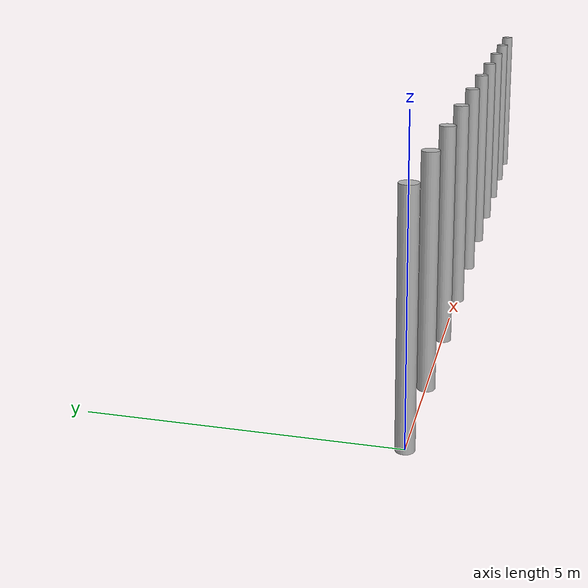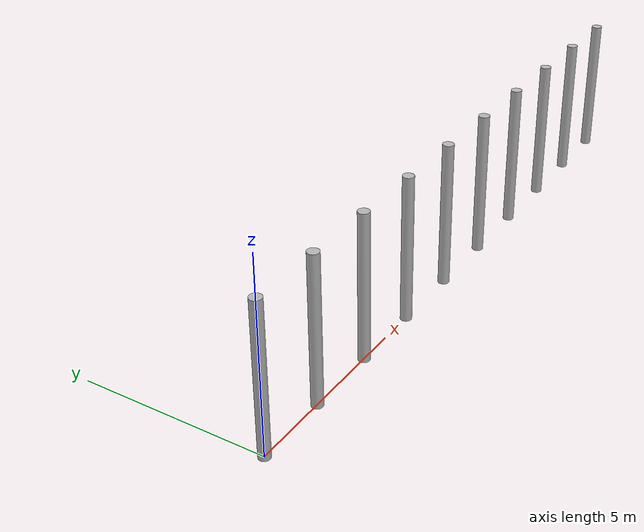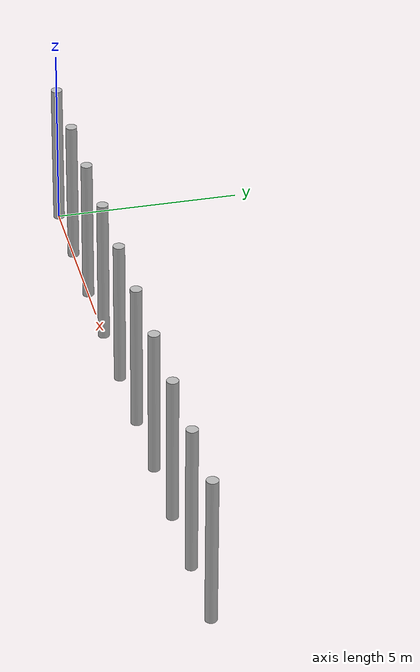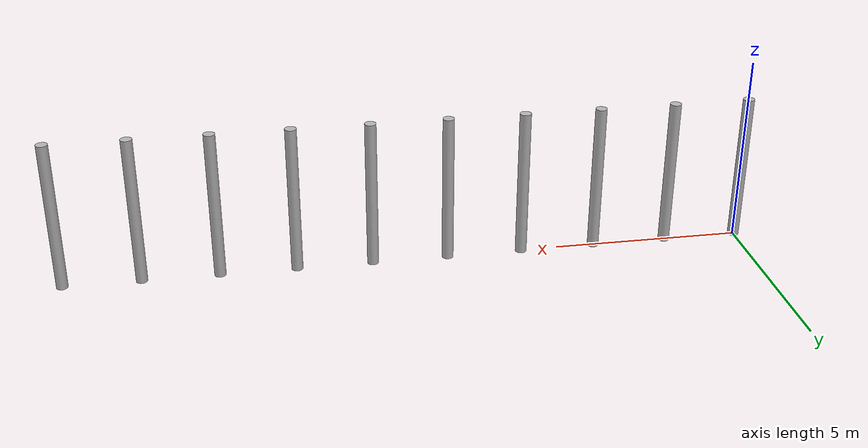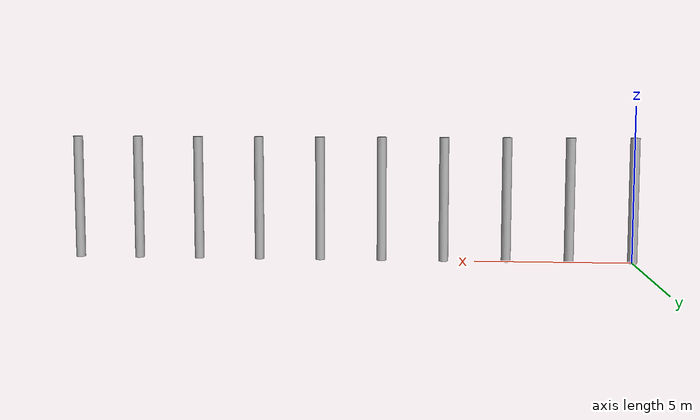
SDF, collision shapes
<?xml version="1.0" ?>
<sdf version="1.6">
  <model name="crop_row">
    <static>true</static>
    <include>
      <name>TREE_0</name>
      <uri>model://pine_tree</uri>
      <pose>0 0 0 0 0 0</pose>
    </include>
    <include>
      <name>TREE_1</name>
      <uri>model://pine_tree</uri>
      <pose>2 0 0 0 0 0</pose>
    </include>
    <include>
      <name>TREE_2</name>
      <uri>model://pine_tree</uri>
      <pose>4 0 0 0 0 0</pose>
    </include>
    <include>
      <name>TREE_3</name>
      <uri>model://pine_tree</uri>
      <pose>6 0 0 0 0 0</pose>
    </include>
    <include>
      <name>TREE_4</name>
      <uri>model://pine_tree</uri>
      <pose>8 0 0 0 0 0</pose>
    </include>
    <include>
      <name>TREE_5</name>
      <uri>model://pine_tree</uri>
      <pose>10 0 0 0 0 0</pose>
    </include>
    <include>
      <name>TREE_6</name>
      <uri>model://pine_tree</uri>
      <pose>12 0 0 0 0 0</pose>
    </include>
    <include>
      <name>TREE_7</name>
      <uri>model://pine_tree</uri>
      <pose>14 0 0 0 0 0</pose>
    </include>
    <include>
      <name>TREE_8</name>
      <uri>model://pine_tree</uri>
      <pose>16 0 0 0 0 0</pose>
    </include>
    <include>
      <name>TREE_9</name>
      <uri>model://pine_tree</uri>
      <pose>18 0 0 0 0 0</pose>
    </include>
  </model>
</sdf>

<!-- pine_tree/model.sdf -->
<sdf version="1.6">
  <model name="pine_tree">
    <static>true</static>
    <link name="link">
      <collision name='collision'>
        <pose>0 0 2.0 0 0 0</pose>
        <geometry>
          <cylinder>
            <radius>0.15</radius>
            <length>4.0</length>
          </cylinder>
        </geometry>
        <max_contacts>10</max_contacts>
        <surface>
          <contact>
            <ode/>
          </contact>
          <bounce/>
          <friction>
            <torsional>
              <ode/>
            </torsional>
            <ode/>
          </friction>
        </surface>
      </collision>
      <visual name="branch">
        <geometry>
          <mesh>
            <uri>model://pine_tree/meshes/pine_tree.dae</uri>
            <submesh>
              <name>Branch</name>
            </submesh>
          </mesh>
        </geometry>
        <material>
          <script>
            <uri>model://pine_tree/materials/scripts/</uri>
            <uri>model://pine_tree/materials/textures/</uri>
            <name>PineTree/Branch</name>
          </script>
        </material>
      </visual>
      <visual name="bark">
        <geometry>
          <mesh>
            <uri>model://pine_tree/meshes/pine_tree.dae</uri>
            <submesh>
              <name>Bark</name>
            </submesh>
          </mesh>
        </geometry>
        <material>
          <script>
            <uri>model://pine_tree/materials/scripts/</uri>
            <uri>model://pine_tree/materials/textures/</uri>
            <name>PineTree/Bark</name>
          </script>
        </material>
      </visual>
    </link>
  </model>
</sdf>
